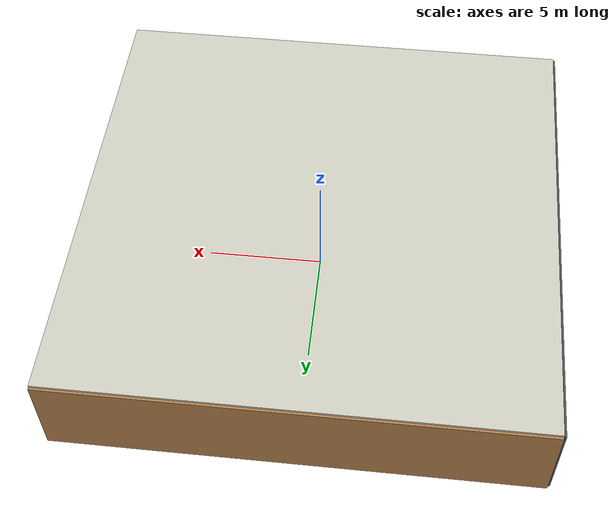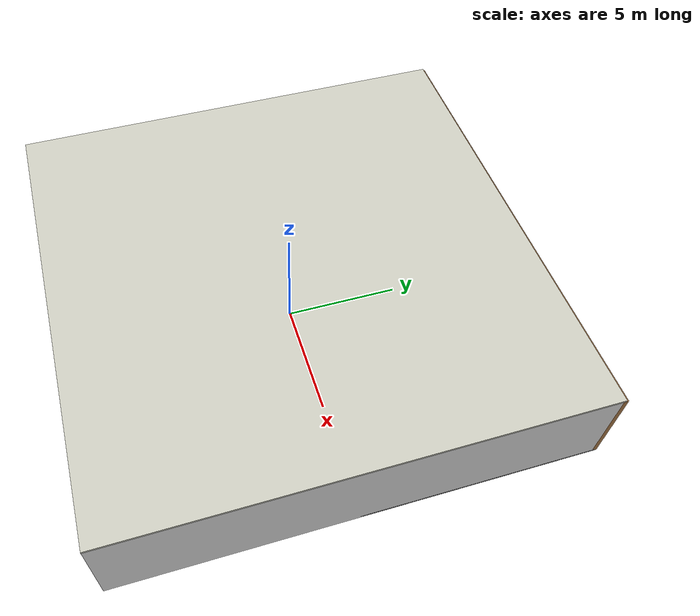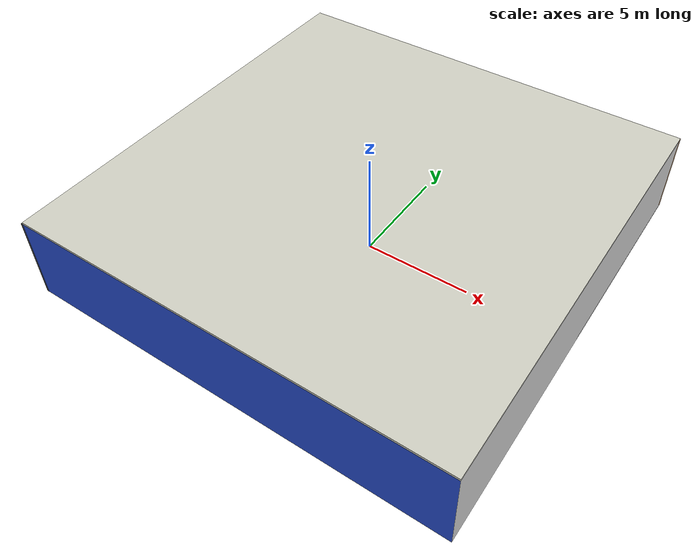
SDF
<sdf version="1.4">
 <world name="default">
  <physics type="ode">
   <max_step_size>0.001</max_step_size>
   <real_time_factor>1</real_time_factor>
   <real_time_update_rate>1000</real_time_update_rate>
   <gravity>0 0 -9.8</gravity>
  </physics>
  <scene><ambient>0.4 0.4 0.4 1</ambient><background>0.7 0.7 0.7 1</background><shadows>1</shadows></scene>
  <model name="Surrounding">
   <static>1</static>
   <link name="Ceiling">
    <collision name="Ceiling_Collision"><geometry><box><size>20 20 0.1</size></box></geometry></collision>
    <visual name="Ceiling_Visual">
     <geometry><box><size>20 20 0.1</size></box></geometry>
     <material>
      <script><uri>file://media/materials/scripts/gazebo.material</uri><name>Gazebo/PaintedWall</name></script>
     </material>
    </visual>
    <pose>0 0 4.05 0 0 0</pose>
   </link>
   <link name="Wall_South">
    <collision name="Wall_South_Collision">
     <geometry><box><size>20 0 4</size></box></geometry>
     <pose>0 0 2 0 -0 0</pose>
    </collision>
    <visual name="Wall_South_Visual">
     <pose>0 0 2 0 -0 0</pose>
     <geometry><box><size>20 0 4</size></box></geometry>
     <material>
      <script><uri>file://media/materials/scripts/gazebo.material</uri><name>Gazebo/BlueGlow</name></script>
     </material>
    </visual>
    <velocity_decay><linear>0</linear><angular>0</angular></velocity_decay>
    <pose>0 -10 0 0 -0 0</pose>
   </link>
   <link name="Wall_East">
    <collision name="Wall_21_Collision">
     <geometry><box><size>20 0 4</size></box></geometry>
     <pose>0 0 2 0 -0 0</pose>
    </collision>
    <visual name="Wall_21_Visual">
     <pose>0 0 2 0 -0 0</pose>
     <geometry><box><size>20 0 4</size></box></geometry>
     <material>
      <script><uri>file://media/materials/scripts/gazebo.material</uri><name>Gazebo/WhiteGlow</name></script>
     </material>
    </visual>
    <velocity_decay><linear>0</linear><angular>0</angular></velocity_decay>
    <pose>10 0 0 0 -0 1.5708</pose>
   </link>
   <link name="Wall_North">
    <collision name="Wall_22_Collision">
     <geometry><box><size>20 0.2 4</size></box></geometry>
     <pose>0 0 2 0 -0 0</pose>
    </collision>
    <visual name="Wall_22_Visual">
     <pose>0 0 2 0 -0 0</pose>
     <geometry><box><size>20 0.2 4</size></box></geometry>
     <material>
      <script><uri>file://media/materials/scripts/gazebo.material</uri><name>Gazebo/WoodFloor</name></script>
     </material>
    </visual>
    <velocity_decay><linear>0</linear><angular>0</angular></velocity_decay>
    <pose>0 10 0 0 -0 0</pose>
   </link>
   <link name="Wall_West">
    <collision name="Wall_23_Collision">
     <geometry><box><size>20 0.2 4</size></box></geometry>
     <pose>0 0 2 0 -0 0</pose>
    </collision>
    <visual name="Wall_23_Visual">
     <pose>0 0 2 0 -0 0</pose>
     <geometry><box><size>20 0.2 4</size></box></geometry>
     <material>
      <script><uri>file://media/materials/scripts/gazebo.material</uri><name>Gazebo/Road</name></script>
     </material>
    </visual>
    <velocity_decay><linear>0</linear><angular>0</angular></velocity_decay>
    <pose>-10 0 0 0 0 -1.5708</pose>
   </link>
   <link name="Ground_link">
    <collision name="collision">
     <pose>0 0 .05 0 -0 0</pose>
     <geometry><box><size>20 20 0.1</size></box></geometry>
    </collision>
    <visual name="visual">
     <pose>0 0 .05 0 -0 0</pose>
     <geometry><box><size>20 20 0.1</size></box></geometry>
     <material>
      <script><uri>file://media/materials/scripts/gazebo.material</uri><name>Gazebo/FlatBlack</name></script>
     </material>
    </visual>
   </link>
   <static>1</static>
  </model>
  <spherical_coordinates>
   <surface_model>EARTH_WGS84</surface_model>
   <latitude_deg>0</latitude_deg>
   <longitude_deg>0</longitude_deg>
   <elevation>0</elevation>
   <heading_deg>0</heading_deg>
  </spherical_coordinates>
  <light name="lightball_0" type="diffuse">
   <diffuse>0.8 0.8 0.8 1</diffuse>
   <specular>0.2 0.2 0.2 1</specular>
   <attenuation>
    <range>100</range>
    <constant>0.7</constant>
    <linear>0.01</linear>
    <quadratic>0.001</quadratic>
   </attenuation>
   <direction>-0.5 0.1 -0.9</direction>
   <pose>2.42528363735 2.68952954719 2.69496175852 0 0 0</pose>
  </light>
  <light name="lightball_1" type="diffuse">
   <diffuse>0.8 0.8 0.8 1</diffuse>
   <specular>0.2 0.2 0.2 1</specular>
   <attenuation>
    <range>100</range>
    <constant>0.7</constant>
    <linear>0.01</linear>
    <quadratic>0.001</quadratic>
   </attenuation>
   <direction>-0.5 0.1 -0.9</direction>
   <pose>-0.600186715461 7.61228396828 1.42340927687 0 0 0</pose>
  </light>
  <light name="lightball_2" type="diffuse">
   <diffuse>0.8 0.8 0.8 1</diffuse>
   <specular>0.2 0.2 0.2 1</specular>
   <attenuation>
    <range>100</range>
    <constant>0.7</constant>
    <linear>0.01</linear>
    <quadratic>0.001</quadratic>
   </attenuation>
   <direction>-0.5 0.1 -0.9</direction>
   <pose>2.57036573779 -1.17363571564 3.5835899012 0 0 0</pose>
  </light>
  <light name="lightball_3" type="diffuse">
   <diffuse>0.8 0.8 0.8 1</diffuse>
   <specular>0.2 0.2 0.2 1</specular>
   <attenuation>
    <range>100</range>
    <constant>0.7</constant>
    <linear>0.01</linear>
    <quadratic>0.001</quadratic>
   </attenuation>
   <direction>-0.5 0.1 -0.9</direction>
   <pose>-5.70793625621 7.17867866332 3.48979486604 0 0 0</pose>
  </light>
  <light name="lightball_4" type="diffuse">
   <diffuse>0.8 0.8 0.8 1</diffuse>
   <specular>0.2 0.2 0.2 1</specular>
   <attenuation>
    <range>100</range>
    <constant>0.7</constant>
    <linear>0.01</linear>
    <quadratic>0.001</quadratic>
   </attenuation>
   <direction>-0.5 0.1 -0.9</direction>
   <pose>1.509399352 9.09210252507 2.48345436017 0 0 0</pose>
  </light>
  <light name="lightball_5" type="diffuse">
   <diffuse>0.8 0.8 0.8 1</diffuse>
   <specular>0.2 0.2 0.2 1</specular>
   <attenuation>
    <range>100</range>
    <constant>0.7</constant>
    <linear>0.01</linear>
    <quadratic>0.001</quadratic>
   </attenuation>
   <direction>-0.5 0.1 -0.9</direction>
   <pose>7.96727873991 1.69415733664 3.37604254744 0 0 0</pose>
  </light>
  <light name="lightball_6" type="diffuse">
   <diffuse>0.8 0.8 0.8 1</diffuse>
   <specular>0.2 0.2 0.2 1</specular>
   <attenuation>
    <range>100</range>
    <constant>0.7</constant>
    <linear>0.01</linear>
    <quadratic>0.001</quadratic>
   </attenuation>
   <direction>-0.5 0.1 -0.9</direction>
   <pose>-3.2145378493 -4.56963079607 0.887128292624 0 0 0</pose>
  </light>
  <light name="lightball_7" type="diffuse">
   <diffuse>0.8 0.8 0.8 1</diffuse>
   <specular>0.2 0.2 0.2 1</specular>
   <attenuation>
    <range>100</range>
    <constant>0.7</constant>
    <linear>0.01</linear>
    <quadratic>0.001</quadratic>
   </attenuation>
   <direction>-0.5 0.1 -0.9</direction>
   <pose>-5.97812244296 6.60516553262 3.23688983598 0 0 0</pose>
  </light>
  <light name="lightball_8" type="diffuse">
   <diffuse>0.8 0.8 0.8 1</diffuse>
   <specular>0.2 0.2 0.2 1</specular>
   <attenuation>
    <range>100</range>
    <constant>0.7</constant>
    <linear>0.01</linear>
    <quadratic>0.001</quadratic>
   </attenuation>
   <direction>-0.5 0.1 -0.9</direction>
   <pose>0.052007354879 -2.92111506573 1.35550769365 0 0 0</pose>
  </light>
  <include>
   <uri>model://robocup_3Dsim_goal</uri>
   <pose>-6.79294611948 -3.80358060617 0 0 0 1.26452828647</pose>
  </include>
  <include><uri>model://cabinet</uri><pose>-6.86673563365 6.4248135709 0 0 0 2.19070339897</pose></include>
  <include>
   <uri>model://robocup_3Dsim_goal</uri>
   <pose>2.6784805248 -3.7782778553 0 0 0 0.956807907225</pose>
  </include>
  <include>
   <uri>model://construction_cone</uri>
   <pose>7.89551887942 -7.96991221357 0 0 0 2.80032097965</pose>
  </include>
  <include>
   <uri>model://textured_shapes</uri>
   <pose>7.71827034498 5.63929812478 0 0 0 0.135163848185</pose>
  </include>
 </world>
</sdf>

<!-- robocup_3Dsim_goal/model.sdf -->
<sdf version="1.5">
  <model name="robocup_3d_goal">
    <static>true</static>
    <link name="left_post">
      <pose>0 1.05 0.45 0 0 0</pose>
      <collision name="collision">
        <geometry>
          <cylinder>
            <radius>0.05</radius>
            <length>0.9</length>
          </cylinder>
        </geometry>
      </collision>
      <visual name="visual">
        <geometry>
          <cylinder>
            <radius>0.05</radius>
            <length>0.9</length>
          </cylinder>
        </geometry>
        <material>
          <script>
            <uri>file://media/materials/scripts/gazebo.material</uri>
            <name>Gazebo/ZincYellow</name>
          </script>
        </material>
      </visual>
    </link>
    <link name="left_support_horiz_lower">
      <pose>0.30 1.05 0.01 0 0 0</pose>
      <collision name="collision">
        <geometry>
          <box>
            <size>0.50 0.02 0.02</size>
          </box>
        </geometry>
      </collision>
      <visual name="visual">
        <geometry>
          <box>
            <size>0.50 0.02 0.02</size>
          </box>
        </geometry>
        <material>
          <script>
            <uri>file://media/materials/scripts/gazebo.material</uri>
            <name>Gazebo/White</name>
          </script>
        </material>
      </visual>
    </link>
    <link name="left_support_horiz_upper">
      <pose>0.30 1.05 0.79 0 0 0</pose>
      <collision name="collision">
        <geometry>
          <box>
            <size>0.50 0.02 0.02</size>
          </box>
        </geometry>
      </collision>
      <visual name="visual">
        <geometry>
          <box>
            <size>0.50 0.02 0.02</size>
          </box>
        </geometry>
        <material>
          <script>
            <uri>file://media/materials/scripts/gazebo.material</uri>
            <name>Gazebo/White</name>
          </script>
        </material>
      </visual>
    </link>
    <link name="left_support_vertical">
      <pose>0.56 1.05 0.4 0 1.5708 0</pose>
      <collision name="collision">
        <geometry>
          <box>
            <size>0.80 0.02 0.02</size>
          </box>
        </geometry>
      </collision>
      <visual name="visual">
        <geometry>
          <box>
            <size>0.80 0.02 0.02</size>
          </box>
        </geometry>
        <material>
          <script>
            <uri>file://media/materials/scripts/gazebo.material</uri>
            <name>Gazebo/White</name>
          </script>
        </material>
      </visual>
    </link>
    <link name="right_support_horiz_lower">
      <pose>0.30 -1.05 0.01 0 0 0</pose>
      <collision name="collision">
        <geometry>
          <box>
            <size>0.50 0.02 0.02</size>
          </box>
        </geometry>
      </collision>
      <visual name="visual">
        <geometry>
          <box>
            <size>0.50 0.02 0.02</size>
          </box>
        </geometry>
        <material>
          <script>
            <uri>file://media/materials/scripts/gazebo.material</uri>
            <name>Gazebo/White</name>
          </script>
        </material>
      </visual>
    </link>
    <link name="right_support_horiz_upper">
      <pose>0.30 -1.05 0.79 0 0 0</pose>
      <collision name="collision">
        <geometry>
          <box>
            <size>0.50 0.02 0.02</size>
          </box>
        </geometry>
      </collision>
      <visual name="visual">
        <geometry>
          <box>
            <size>0.50 0.02 0.02</size>
          </box>
        </geometry>
        <material>
          <script>
            <uri>file://media/materials/scripts/gazebo.material</uri>
            <name>Gazebo/White</name>
          </script>
        </material>
      </visual>
    </link>
    <link name="right_support_vertical">
      <pose>0.56 -1.05 0.4 0 1.5708 0</pose>
      <collision name="collision">
        <geometry>
          <box>
            <size>0.80 0.02 0.02</size>
          </box>
        </geometry>
      </collision>
      <visual name="visual">
        <geometry>
          <box>
            <size>0.80 0.02 0.02</size>
          </box>
        </geometry>
        <material>
          <script>
            <uri>file://media/materials/scripts/gazebo.material</uri>
            <name>Gazebo/White</name>
          </script>
        </material>
      </visual>
    </link>
    <link name="center_support_horiz_lower">
      <pose>0.56 0 0.01 0 1.5708 0</pose>
      <collision name="collision">
        <geometry>
          <box>
            <size>0.02 2.08 0.02</size>
          </box>
        </geometry>
      </collision>
      <visual name="visual">
        <geometry>
          <box>
            <size>0.02 2.08 0.02</size>
          </box>
        </geometry>
        <material>
          <script>
            <uri>file://media/materials/scripts/gazebo.material</uri>
            <name>Gazebo/White</name>
          </script>
        </material>
      </visual>
    </link>
    <link name="center_support_horiz_upper">
      <pose>0.56 0 0.79 0 1.5708 0</pose>
      <collision name="collision">
        <geometry>
          <box>
            <size>0.02 2.08 0.02</size>
          </box>
        </geometry>
      </collision>
      <visual name="visual">
        <geometry>
          <box>
            <size>0.02 2.08 0.02</size>
          </box>
        </geometry>
        <material>
          <script>
            <uri>file://media/materials/scripts/gazebo.material</uri>
            <name>Gazebo/White</name>
          </script>
        </material>
      </visual>
    </link>
    <link name="right_post">
      <pose>0 -1.05 0.45 0 0 0</pose>
      <collision name="collision">
        <geometry>
          <cylinder>
            <radius>0.05</radius>
            <length>0.9</length>
          </cylinder>
        </geometry>
      </collision>
      <visual name="visual">
        <geometry>
          <cylinder>
            <radius>0.05</radius>
            <length>0.9</length>
          </cylinder>
        </geometry>
        <material>
          <script>
            <uri>file://media/materials/scripts/gazebo.material</uri>
            <name>Gazebo/ZincYellow</name>
          </script>
        </material>
      </visual>
    </link>
    <link name="crossbar">
      <pose>0 0 0.85 1.57 1.57 0</pose>
      <collision name="collision">
        <geometry>
          <cylinder>
            <radius>0.05</radius>
            <length>2.0</length>
          </cylinder>
        </geometry>
      </collision>
      <visual name="visual">
        <geometry>
          <cylinder>
            <radius>0.05</radius>
            <length>2.0</length>
          </cylinder>
        </geometry>
        <material>
          <script>
            <uri>file://media/materials/scripts/gazebo.material</uri>
            <name>Gazebo/ZincYellow</name>
          </script>
        </material>
      </visual>
    </link>
    <link name="center_net">
      <pose>0.56 0 0.40 0 0 0</pose>
      <collision name="collision">
        <geometry>
          <box>
            <size>0.01 2.1 0.80</size>
          </box>
        </geometry>
      </collision>
      <visual name="visual">
        <geometry>
          <box>
            <size>0.01 2.1 0.80</size>
          </box>
        </geometry>
        <material>
          <script>
            <uri>model://../model_source/models/robocup09_spl_field/materials/scripts/</uri>
            <uri>model://../model_source/models/robocup09_spl_field/materials/textures/</uri>
            <name>RoboCup/Net</name>
          </script>
        </material>
      </visual>
    </link>
    <link name="left_net">
      <pose>0.30 1.05 0.40 0 0 0</pose>
      <collision name="collision">
        <geometry>
          <box>
            <size>0.50 0.01 0.76</size>
          </box>
        </geometry>
      </collision>
      <visual name="visual">
        <geometry>
          <box>
            <size>0.50 0.01 0.76</size>
          </box>
        </geometry>
        <material>
          <script>
            <uri>model://../model_source/models/robocup09_spl_field/materials/scripts/</uri>
            <uri>model://../model_source/models/robocup09_spl_field/materials/textures/</uri>
            <name>RoboCup/Net</name>
          </script>
        </material>
      </visual>
    </link>
    <link name="right_net">
      <pose>0.30 -1.05 0.40 0 0 0</pose>
      <collision name="collision">
        <geometry>
          <box>
            <size>0.50 0.01 0.76</size>
          </box>
        </geometry>
      </collision>
      <visual name="visual">
        <geometry>
          <box>
            <size>0.50 0.01 0.76</size>
          </box>
        </geometry>
        <material>
          <script>
            <uri>model://../model_source/models/robocup09_spl_field/materials/scripts/</uri>
            <uri>model://../model_source/models/robocup09_spl_field/materials/textures/</uri>
            <name>RoboCup/Net</name>
          </script>
        </material>
      </visual>
    </link>
  </model>
</sdf>

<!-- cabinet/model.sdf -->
<sdf version="1.5">
  <model name="cabinet">
    <static>true</static>
    <link name="cabinet_bottom_plate">
      <inertial>
        <pose>0 0 -1 0 0 0</pose>
        <inertia>
          <ixx>2.050000</ixx>
          <ixy>0</ixy>
          <ixz>0</ixz>
          <iyy>2.050000</iyy>
          <iyz>0</iyz>
          <izz>2.050000</izz>
        </inertia>
        <mass>25.000000</mass>
      </inertial>
      <collision name="cabinet_bottom_plate_geom">
        <pose>0 0 0.010000 0 0 0</pose>
        <geometry>
          <box>
            <size>0.450000 0.450000 0.020000</size>
          </box>
        </geometry>
      </collision>
      <visual name="cabinet_bottom_plate_geom_visual">
        <pose>0 0 0.010000 0 0 0</pose>
        <geometry>
          <box>
            <size>0.450000 0.450000 0.020000</size>
          </box>
        </geometry>
        <material>
          <script>
            <uri>model://media/materials/scripts/gazebo.material</uri>
            <name>Gazebo/Wood</name>
          </script>
        </material>
      </visual>
      <collision name="cabinet_bottom_plate_geom_cabinet_back_plate">
        <pose>0.235000 0 0.510000 0 0 0</pose>
        <geometry>
          <box>
            <size>0.020000 0.450000 1.020000</size>
          </box>
        </geometry>
      </collision>
      <visual name="cabinet_bottom_plate_geom_cabinet_back_plate_visual">
        <pose>0.235000 0 0.510000 0 0 0</pose>
        <geometry>
          <box>
            <size>0.020000 0.450000 1.020000</size>
          </box>
        </geometry>
        <material>
          <script>
            <uri>model://media/materials/scripts/gazebo.material</uri>
            <name>Gazebo/Wood</name>
          </script>
        </material>
      </visual>
      <collision name="cabinet_bottom_plate_geom_cabinet_left_plate">
        <pose>0 0.235000 0.510000 0 0 0</pose>
        <geometry>
          <box>
            <size>0.450000 0.020000 1.020000</size>
          </box>
        </geometry>
      </collision>
      <visual name="cabinet_bottom_plate_geom_cabinet_left_plate_visual">
        <pose>0 0.235000 0.510000 0 0 0</pose>
        <geometry>
          <box>
            <size>0.450000 0.020000 1.020000</size>
          </box>
        </geometry>
        <material>
          <script>
            <uri>model://media/materials/scripts/gazebo.material</uri>
            <name>Gazebo/Wood</name>
          </script>
        </material>
      </visual>
      <collision name="cabinet_bottom_plate_geom_cabinet_middle_plate">
        <pose>0 0 0.510000 0 0 0</pose>
        <geometry>
          <box>
            <size>0.450000 0.450000 0.020000</size>
          </box>
        </geometry>
      </collision>
      <visual name="cabinet_bottom_plate_geom_cabinet_middle_plate_visual">
        <pose>0 0 0.510000 0 0 0</pose>
        <geometry>
          <box>
            <size>0.450000 0.450000 0.020000</size>
          </box>
        </geometry>
        <material>
          <script>
            <uri>model://media/materials/scripts/gazebo.material</uri>
            <name>Gazebo/Wood</name>
          </script>
        </material>
      </visual>
      <collision name="cabinet_bottom_plate_geom_cabinet_right_plate">
        <pose>0 -0.235000 0.510000 0 0 0</pose>
        <geometry>
          <box>
            <size>0.450000 0.020000 1.020000</size>
          </box>
        </geometry>
      </collision>
      <visual name="cabinet_bottom_plate_geom_cabinet_right_plate_visual">
        <pose>0 -0.235000 0.510000 0 0 0</pose>
        <geometry>
          <box>
            <size>0.450000 0.020000 1.020000</size>
          </box>
        </geometry>
        <material>
          <script>
            <uri>model://media/materials/scripts/gazebo.material</uri>
            <name>Gazebo/Wood</name>
          </script>
        </material>
      </visual>
      <collision name="cabinet_bottom_plate_geom_cabinet_top_plate">
        <pose>0 0 1.010000 0 0 0</pose>
        <geometry>
          <box>
            <size>0.450000 0.450000 0.020000</size>
          </box>
        </geometry>
      </collision>
      <visual name="cabinet_bottom_plate_geom_cabinet_top_plate_visual">
        <pose>0 0 1.010000 0 0 0</pose>
        <geometry>
          <box>
            <size>0.450000 0.450000 0.020000</size>
          </box>
        </geometry>
        <material>
          <script>
            <uri>model://media/materials/scripts/gazebo.material</uri>
            <name>Gazebo/Wood</name>
          </script>
        </material>
      </visual>
    </link>
  </model>
</sdf>

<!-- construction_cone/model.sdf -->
<sdf version="1.5">
  <model name="Construction Cone">
    <link name="link">
      <collision name="collision">
        <geometry>
          <mesh>
            <scale>10 10 10</scale>
            <uri>file://isr-testbed/construction_cone/meshes/construction_cone.dae</uri>
          </mesh>
        </geometry>
      </collision>
      <visual name="visual">
        <geometry>
          <mesh>
            <scale>10 10 10</scale>
            <uri>file://isr-testbed/construction_cone/meshes/construction_cone.dae</uri>
          </mesh>
        </geometry>
      </visual>
    </link>
  </model>
</sdf>

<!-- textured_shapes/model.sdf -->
<sdf version="1.6">
  <model name="textured_shapes">
    <pose>0 0 0.5 0 0 0</pose>
    <link name="box">
      <pose>0 -1.5 0 0 0 0</pose>
      <collision name="collision">
        <geometry>
          <box>
            <size>1 1 1</size>
          </box>
        </geometry>
      </collision>
      <visual name="visual">
        <geometry>
          <box>
            <size>1 1 1</size>
          </box>
        </geometry>
        <material>
          <script>
            <uri>model://../model_source/models/textured_shapes/materials/scripts</uri>
            <uri>model://../model_source/models/textured_shapes/materials/textures</uri>
            <name>TexturedShape/Squares</name>
          </script>
        </material>
      </visual>
    </link>
    <link name="sphere">
      <collision name="collision">
        <geometry>
          <sphere>
            <radius>0.5</radius>
          </sphere>
        </geometry>
      </collision>
      <visual name="visual">
        <geometry>
          <sphere>
            <radius>0.5</radius>
          </sphere>
        </geometry>
        <material>
          <script>
            <uri>model://../model_source/models/textured_shapes/materials/scripts</uri>
            <uri>model://../model_source/models/textured_shapes/materials/textures</uri>
            <name>TexturedShape/Squares</name>
          </script>
        </material>
      </visual>
    </link>
    <link name="cylinder">
      <pose>0 1.5 0 0 0 0</pose>
      <collision name="collision">
        <geometry>
          <cylinder>
            <radius>0.5</radius>
            <length>1</length>
          </cylinder>
        </geometry>
      </collision>
      <visual name="visual">
        <geometry>
          <cylinder>
            <radius>0.5</radius>
            <length>1</length>
          </cylinder>
        </geometry>
        <material>
          <script>
            <uri>model://../model_source/models/textured_shapes/materials/scripts</uri>
            <uri>model://../model_source/models/textured_shapes/materials/textures</uri>
            <name>TexturedShape/Squares</name>
          </script>
        </material>
      </visual>
    </link>
  </model>
</sdf>
